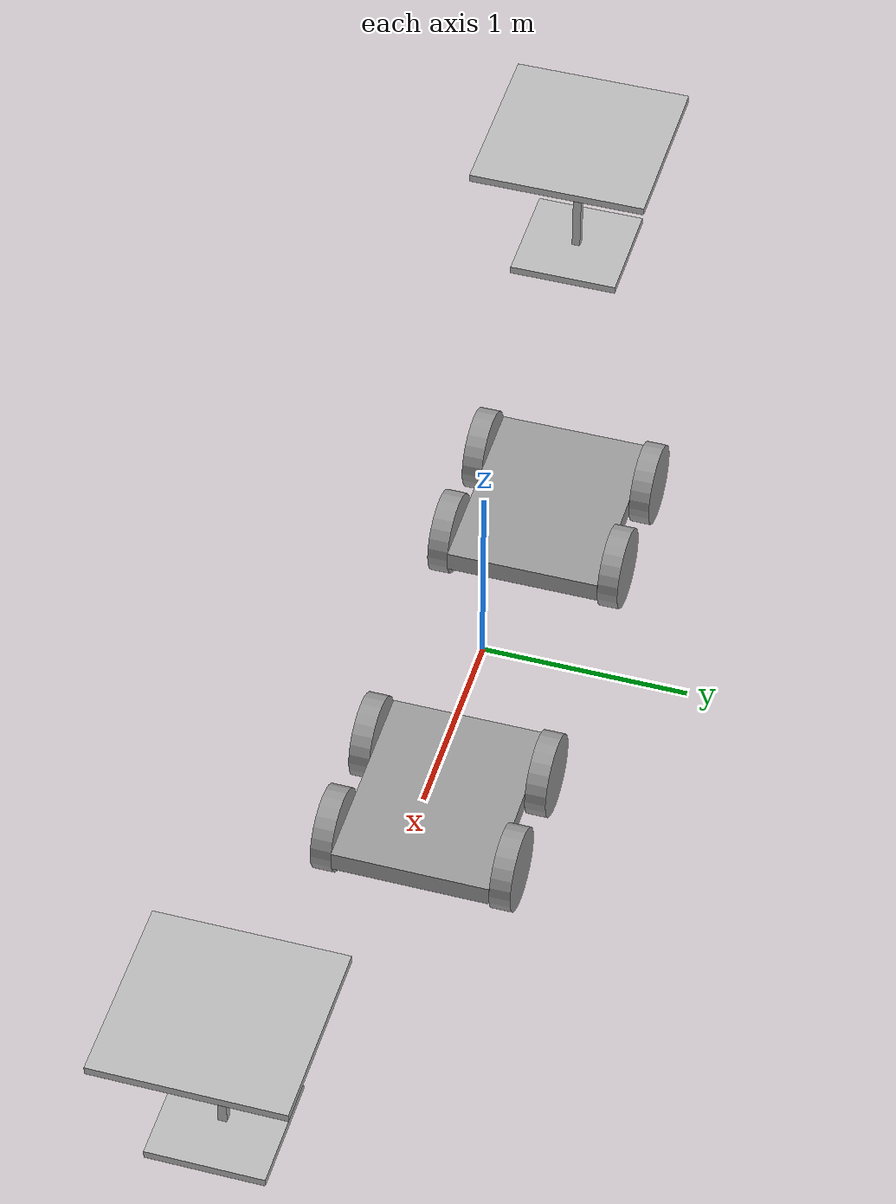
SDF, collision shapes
<?xml version='1.0'?>
<sdf version='1.6'>
  <model name='robotcar'>
    <link name='link_0'>
      <pose frame=''>1.00986 0.084907 0.033333 0 -0 0</pose>
      <inertial>
        <mass>1</mass>
        <inertia>
          <ixx>0.166667</ixx>
          <ixy>0</ixy>
          <ixz>0</ixz>
          <iyy>0.166667</iyy>
          <iyz>0</iyz>
          <izz>0.166667</izz>
        </inertia>
        <pose frame=''>0 0 0 0 -0 0</pose>
      </inertial>
      <gravity>1</gravity>
      <self_collide>0</self_collide>
      <kinematic>0</kinematic>
      <visual name='visual'>
        <pose frame=''>0 0 0 0 -0 0</pose>
        <geometry>
          <box>
            <size>1 0.75 0.1</size>
          </box>
        </geometry>
        <material>
          <lighting>1</lighting>
          <script>
            <uri>file://media/materials/scripts/gazebo.material</uri>
            <name>Gazebo/Grey</name>
          </script>
          <shader type='pixel'>
            <normal_map>__default__</normal_map>
          </shader>
          <ambient>0.3 0.3 0.3 1</ambient>
          <diffuse>0.7 0.7 0.7 1</diffuse>
          <specular>0.01 0.01 0.01 1</specular>
          <emissive>0 0 0 1</emissive>
        </material>
        <transparency>0</transparency>
        <cast_shadows>1</cast_shadows>
      </visual>
      <collision name='collision'>
        <laser_retro>0</laser_retro>
        <max_contacts>10</max_contacts>
        <pose frame=''>0 0 0 0 -0 0</pose>
        <geometry>
          <box>
            <size>1 0.75 0.1</size>
          </box>
        </geometry>
        <surface>
          <friction>
            <ode>
              <mu>1</mu>
              <mu2>1</mu2>
              <fdir1>0 0 0</fdir1>
              <slip1>0</slip1>
              <slip2>0</slip2>
            </ode>
            <torsional>
              <coefficient>1</coefficient>
              <patch_radius>0</patch_radius>
              <surface_radius>0</surface_radius>
              <use_patch_radius>1</use_patch_radius>
              <ode>
                <slip>0</slip>
              </ode>
            </torsional>
          </friction>
          <bounce>
            <restitution_coefficient>0</restitution_coefficient>
            <threshold>1e+06</threshold>
          </bounce>
          <contact>
            <collide_without_contact>0</collide_without_contact>
            <collide_without_contact_bitmask>1</collide_without_contact_bitmask>
            <collide_bitmask>1</collide_bitmask>
            <ode>
              <soft_cfm>0</soft_cfm>
              <soft_erp>0.2</soft_erp>
              <kp>1e+13</kp>
              <kd>1</kd>
              <max_vel>0.01</max_vel>
              <min_depth>0</min_depth>
            </ode>
            <bullet>
              <split_impulse>1</split_impulse>
              <split_impulse_penetration_threshold>-0.01</split_impulse_penetration_threshold>
              <soft_cfm>0</soft_cfm>
              <soft_erp>0.2</soft_erp>
              <kp>1e+13</kp>
              <kd>1</kd>
            </bullet>
          </contact>
        </surface>
      </collision>
    </link>
    <link name='link_0_clone'>
      <pose frame=''>-0.984516 0.057028 0.033333 0 -0 0</pose>
      <inertial>
        <mass>1</mass>
        <inertia>
          <ixx>0.166667</ixx>
          <ixy>0</ixy>
          <ixz>0</ixz>
          <iyy>0.166667</iyy>
          <iyz>0</iyz>
          <izz>0.166667</izz>
        </inertia>
        <pose frame=''>0 0 0 0 -0 0</pose>
      </inertial>
      <self_collide>0</self_collide>
      <kinematic>0</kinematic>
      <visual name='visual'>
        <pose frame=''>0 0 0 0 -0 0</pose>
        <geometry>
          <box>
            <size>1 0.75 0.1</size>
          </box>
        </geometry>
        <material>
          <lighting>1</lighting>
          <script>
            <uri>file://media/materials/scripts/gazebo.material</uri>
            <name>Gazebo/Grey</name>
          </script>
          <shader type='pixel'>
            <normal_map>__default__</normal_map>
          </shader>
          <ambient>0.3 0.3 0.3 1</ambient>
          <diffuse>0.7 0.7 0.7 1</diffuse>
          <specular>0.01 0.01 0.01 1</specular>
          <emissive>0 0 0 1</emissive>
        </material>
        <transparency>0</transparency>
        <cast_shadows>1</cast_shadows>
      </visual>
      <collision name='collision'>
        <laser_retro>0</laser_retro>
        <max_contacts>10</max_contacts>
        <pose frame=''>0 0 0 0 -0 0</pose>
        <geometry>
          <box>
            <size>1 0.75 0.1</size>
          </box>
        </geometry>
        <surface>
          <friction>
            <ode>
              <mu>1</mu>
              <mu2>1</mu2>
              <fdir1>0 0 0</fdir1>
              <slip1>0</slip1>
              <slip2>0</slip2>
            </ode>
            <torsional>
              <coefficient>1</coefficient>
              <patch_radius>0</patch_radius>
              <surface_radius>0</surface_radius>
              <use_patch_radius>1</use_patch_radius>
              <ode>
                <slip>0</slip>
              </ode>
            </torsional>
          </friction>
          <bounce>
            <restitution_coefficient>0</restitution_coefficient>
            <threshold>1e+06</threshold>
          </bounce>
          <contact>
            <collide_without_contact>0</collide_without_contact>
            <collide_without_contact_bitmask>1</collide_without_contact_bitmask>
            <collide_bitmask>1</collide_bitmask>
            <ode>
              <soft_cfm>0</soft_cfm>
              <soft_erp>0.2</soft_erp>
              <kp>1e+13</kp>
              <kd>1</kd>
              <max_vel>0.01</max_vel>
              <min_depth>0</min_depth>
            </ode>
            <bullet>
              <split_impulse>1</split_impulse>
              <split_impulse_penetration_threshold>-0.01</split_impulse_penetration_threshold>
              <soft_cfm>0</soft_cfm>
              <soft_erp>0.2</soft_erp>
              <kp>1e+13</kp>
              <kd>1</kd>
            </bullet>
          </contact>
        </surface>
      </collision>
    </link>
    <link name='link_1_clone'>
      <pose frame=''>1.30986 0.509926 0.033333 1.5707 -0 0</pose>
      <inertial>
        <mass>1</mass>
        <inertia>
          <ixx>0.145833</ixx>
          <ixy>0</ixy>
          <ixz>0</ixz>
          <iyy>0.145833</iyy>
          <iyz>0</iyz>
          <izz>0.125</izz>
        </inertia>
        <pose frame=''>0 0 0 0 -0 0</pose>
      </inertial>
      <self_collide>0</self_collide>
      <kinematic>0</kinematic>
      <visual name='visual'>
        <pose frame=''>0 0 0 0 -0 0</pose>
        <geometry>
          <cylinder>
            <radius>0.2</radius>
            <length>0.1</length>
          </cylinder>
        </geometry>
        <material>
          <lighting>1</lighting>
          <script>
            <uri>file://media/materials/scripts/gazebo.material</uri>
            <name>Gazebo/Grey</name>
          </script>
          <shader type='pixel'>
            <normal_map>__default__</normal_map>
          </shader>
          <ambient>0.3 0.3 0.3 1</ambient>
          <diffuse>0.7 0.7 0.7 1</diffuse>
          <specular>0.01 0.01 0.01 1</specular>
          <emissive>0 0 0 1</emissive>
        </material>
        <transparency>0</transparency>
        <cast_shadows>1</cast_shadows>
      </visual>
      <collision name='collision'>
        <laser_retro>0</laser_retro>
        <max_contacts>10</max_contacts>
        <pose frame=''>0 0 0 0 -0 0</pose>
        <geometry>
          <cylinder>
            <radius>0.2</radius>
            <length>0.1</length>
          </cylinder>
        </geometry>
        <surface>
          <friction>
            <ode>
              <mu>1</mu>
              <mu2>1</mu2>
              <fdir1>0 0 0</fdir1>
              <slip1>0</slip1>
              <slip2>0</slip2>
            </ode>
            <torsional>
              <coefficient>1</coefficient>
              <patch_radius>0</patch_radius>
              <surface_radius>0</surface_radius>
              <use_patch_radius>1</use_patch_radius>
              <ode>
                <slip>0</slip>
              </ode>
            </torsional>
          </friction>
          <bounce>
            <restitution_coefficient>0</restitution_coefficient>
            <threshold>1e+06</threshold>
          </bounce>
          <contact>
            <collide_without_contact>0</collide_without_contact>
            <collide_without_contact_bitmask>1</collide_without_contact_bitmask>
            <collide_bitmask>1</collide_bitmask>
            <ode>
              <soft_cfm>0</soft_cfm>
              <soft_erp>0.2</soft_erp>
              <kp>1e+13</kp>
              <kd>1</kd>
              <max_vel>0.01</max_vel>
              <min_depth>0</min_depth>
            </ode>
            <bullet>
              <split_impulse>1</split_impulse>
              <split_impulse_penetration_threshold>-0.01</split_impulse_penetration_threshold>
              <soft_cfm>0</soft_cfm>
              <soft_erp>0.2</soft_erp>
              <kp>1e+13</kp>
              <kd>1</kd>
            </bullet>
          </contact>
        </surface>
      </collision>
    </link>
    <link name='link_1_clone_0'>
      <pose frame=''>1.30986 -0.340113 0.033333 1.5707 -0 0</pose>
      <inertial>
        <mass>1</mass>
        <inertia>
          <ixx>0.145833</ixx>
          <ixy>0</ixy>
          <ixz>0</ixz>
          <iyy>0.145833</iyy>
          <iyz>0</iyz>
          <izz>0.125</izz>
        </inertia>
        <pose frame=''>0 0 0 0 -0 0</pose>
      </inertial>
      <self_collide>0</self_collide>
      <kinematic>0</kinematic>
      <visual name='visual'>
        <pose frame=''>0 0 0 0 -0 0</pose>
        <geometry>
          <cylinder>
            <radius>0.2</radius>
            <length>0.1</length>
          </cylinder>
        </geometry>
        <material>
          <lighting>1</lighting>
          <script>
            <uri>file://media/materials/scripts/gazebo.material</uri>
            <name>Gazebo/Grey</name>
          </script>
          <shader type='pixel'>
            <normal_map>__default__</normal_map>
          </shader>
          <ambient>0.3 0.3 0.3 1</ambient>
          <diffuse>0.7 0.7 0.7 1</diffuse>
          <specular>0.01 0.01 0.01 1</specular>
          <emissive>0 0 0 1</emissive>
        </material>
        <transparency>0</transparency>
        <cast_shadows>1</cast_shadows>
      </visual>
      <collision name='collision'>
        <laser_retro>0</laser_retro>
        <max_contacts>10</max_contacts>
        <pose frame=''>0 0 0 0 -0 0</pose>
        <geometry>
          <cylinder>
            <radius>0.2</radius>
            <length>0.1</length>
          </cylinder>
        </geometry>
        <surface>
          <friction>
            <ode>
              <mu>1</mu>
              <mu2>1</mu2>
              <fdir1>0 0 0</fdir1>
              <slip1>0</slip1>
              <slip2>0</slip2>
            </ode>
            <torsional>
              <coefficient>1</coefficient>
              <patch_radius>0</patch_radius>
              <surface_radius>0</surface_radius>
              <use_patch_radius>1</use_patch_radius>
              <ode>
                <slip>0</slip>
              </ode>
            </torsional>
          </friction>
          <bounce>
            <restitution_coefficient>0</restitution_coefficient>
            <threshold>1e+06</threshold>
          </bounce>
          <contact>
            <collide_without_contact>0</collide_without_contact>
            <collide_without_contact_bitmask>1</collide_without_contact_bitmask>
            <collide_bitmask>1</collide_bitmask>
            <ode>
              <soft_cfm>0</soft_cfm>
              <soft_erp>0.2</soft_erp>
              <kp>1e+13</kp>
              <kd>1</kd>
              <max_vel>0.01</max_vel>
              <min_depth>0</min_depth>
            </ode>
            <bullet>
              <split_impulse>1</split_impulse>
              <split_impulse_penetration_threshold>-0.01</split_impulse_penetration_threshold>
              <soft_cfm>0</soft_cfm>
              <soft_erp>0.2</soft_erp>
              <kp>1e+13</kp>
              <kd>1</kd>
            </bullet>
          </contact>
        </surface>
      </collision>
    </link>
    <link name='link_1_clone_1'>
      <pose frame=''>0.709862 -0.340113 0.033333 1.5707 -0 0</pose>
      <inertial>
        <mass>1</mass>
        <inertia>
          <ixx>0.145833</ixx>
          <ixy>0</ixy>
          <ixz>0</ixz>
          <iyy>0.145833</iyy>
          <iyz>0</iyz>
          <izz>0.125</izz>
        </inertia>
        <pose frame=''>0 0 0 0 -0 0</pose>
      </inertial>
      <self_collide>0</self_collide>
      <kinematic>0</kinematic>
      <visual name='visual'>
        <pose frame=''>0 0 0 0 -0 0</pose>
        <geometry>
          <cylinder>
            <radius>0.2</radius>
            <length>0.1</length>
          </cylinder>
        </geometry>
        <material>
          <lighting>1</lighting>
          <script>
            <uri>file://media/materials/scripts/gazebo.material</uri>
            <name>Gazebo/Grey</name>
          </script>
          <shader type='pixel'>
            <normal_map>__default__</normal_map>
          </shader>
          <ambient>0.3 0.3 0.3 1</ambient>
          <diffuse>0.7 0.7 0.7 1</diffuse>
          <specular>0.01 0.01 0.01 1</specular>
          <emissive>0 0 0 1</emissive>
        </material>
        <transparency>0</transparency>
        <cast_shadows>1</cast_shadows>
      </visual>
      <collision name='collision'>
        <laser_retro>0</laser_retro>
        <max_contacts>10</max_contacts>
        <pose frame=''>0 0 0 0 -0 0</pose>
        <geometry>
          <cylinder>
            <radius>0.2</radius>
            <length>0.1</length>
          </cylinder>
        </geometry>
        <surface>
          <friction>
            <ode>
              <mu>1</mu>
              <mu2>1</mu2>
              <fdir1>0 0 0</fdir1>
              <slip1>0</slip1>
              <slip2>0</slip2>
            </ode>
            <torsional>
              <coefficient>1</coefficient>
              <patch_radius>0</patch_radius>
              <surface_radius>0</surface_radius>
              <use_patch_radius>1</use_patch_radius>
              <ode>
                <slip>0</slip>
              </ode>
            </torsional>
          </friction>
          <bounce>
            <restitution_coefficient>0</restitution_coefficient>
            <threshold>1e+06</threshold>
          </bounce>
          <contact>
            <collide_without_contact>0</collide_without_contact>
            <collide_without_contact_bitmask>1</collide_without_contact_bitmask>
            <collide_bitmask>1</collide_bitmask>
            <ode>
              <soft_cfm>0</soft_cfm>
              <soft_erp>0.2</soft_erp>
              <kp>1e+13</kp>
              <kd>1</kd>
              <max_vel>0.01</max_vel>
              <min_depth>0</min_depth>
            </ode>
            <bullet>
              <split_impulse>1</split_impulse>
              <split_impulse_penetration_threshold>-0.01</split_impulse_penetration_threshold>
              <soft_cfm>0</soft_cfm>
              <soft_erp>0.2</soft_erp>
              <kp>1e+13</kp>
              <kd>1</kd>
            </bullet>
          </contact>
        </surface>
      </collision>
    </link>
    <link name='link_1_clone_clone'>
      <pose frame=''>0.709862 0.509926 0.033333 1.5707 -0 0</pose>
      <inertial>
        <mass>1</mass>
        <inertia>
          <ixx>0.145833</ixx>
          <ixy>0</ixy>
          <ixz>0</ixz>
          <iyy>0.145833</iyy>
          <iyz>0</iyz>
          <izz>0.125</izz>
        </inertia>
        <pose frame=''>0 0 0 0 -0 0</pose>
      </inertial>
      <self_collide>0</self_collide>
      <kinematic>0</kinematic>
      <visual name='visual'>
        <pose frame=''>0 0 0 0 -0 0</pose>
        <geometry>
          <cylinder>
            <radius>0.2</radius>
            <length>0.1</length>
          </cylinder>
        </geometry>
        <material>
          <lighting>1</lighting>
          <script>
            <uri>file://media/materials/scripts/gazebo.material</uri>
            <name>Gazebo/Grey</name>
          </script>
          <shader type='pixel'>
            <normal_map>__default__</normal_map>
          </shader>
          <ambient>0.3 0.3 0.3 1</ambient>
          <diffuse>0.7 0.7 0.7 1</diffuse>
          <specular>0.01 0.01 0.01 1</specular>
          <emissive>0 0 0 1</emissive>
        </material>
        <transparency>0</transparency>
        <cast_shadows>1</cast_shadows>
      </visual>
      <collision name='collision'>
        <laser_retro>0</laser_retro>
        <max_contacts>10</max_contacts>
        <pose frame=''>0 0 0 0 -0 0</pose>
        <geometry>
          <cylinder>
            <radius>0.2</radius>
            <length>0.1</length>
          </cylinder>
        </geometry>
        <surface>
          <friction>
            <ode>
              <mu>1</mu>
              <mu2>1</mu2>
              <fdir1>0 0 0</fdir1>
              <slip1>0</slip1>
              <slip2>0</slip2>
            </ode>
            <torsional>
              <coefficient>1</coefficient>
              <patch_radius>0</patch_radius>
              <surface_radius>0</surface_radius>
              <use_patch_radius>1</use_patch_radius>
              <ode>
                <slip>0</slip>
              </ode>
            </torsional>
          </friction>
          <bounce>
            <restitution_coefficient>0</restitution_coefficient>
            <threshold>1e+06</threshold>
          </bounce>
          <contact>
            <collide_without_contact>0</collide_without_contact>
            <collide_without_contact_bitmask>1</collide_without_contact_bitmask>
            <collide_bitmask>1</collide_bitmask>
            <ode>
              <soft_cfm>0</soft_cfm>
              <soft_erp>0.2</soft_erp>
              <kp>1e+13</kp>
              <kd>1</kd>
              <max_vel>0.01</max_vel>
              <min_depth>0</min_depth>
            </ode>
            <bullet>
              <split_impulse>1</split_impulse>
              <split_impulse_penetration_threshold>-0.01</split_impulse_penetration_threshold>
              <soft_cfm>0</soft_cfm>
              <soft_erp>0.2</soft_erp>
              <kp>1e+13</kp>
              <kd>1</kd>
            </bullet>
          </contact>
        </surface>
      </collision>
    </link>
    <link name='link_1_clone_clone_clone'>
      <pose frame=''>-0.684516 0.482047 0.033333 1.5707 -0 0</pose>
      <inertial>
        <mass>1</mass>
        <inertia>
          <ixx>0.145833</ixx>
          <ixy>0</ixy>
          <ixz>0</ixz>
          <iyy>0.145833</iyy>
          <iyz>0</iyz>
          <izz>0.125</izz>
        </inertia>
        <pose frame=''>0 0 0 0 -0 0</pose>
      </inertial>
      <self_collide>0</self_collide>
      <kinematic>0</kinematic>
      <visual name='visual'>
        <pose frame=''>0 0 0 0 -0 0</pose>
        <geometry>
          <cylinder>
            <radius>0.2</radius>
            <length>0.1</length>
          </cylinder>
        </geometry>
        <material>
          <lighting>1</lighting>
          <script>
            <uri>file://media/materials/scripts/gazebo.material</uri>
            <name>Gazebo/Grey</name>
          </script>
          <shader type='pixel'>
            <normal_map>__default__</normal_map>
          </shader>
          <ambient>0.3 0.3 0.3 1</ambient>
          <diffuse>0.7 0.7 0.7 1</diffuse>
          <specular>0.01 0.01 0.01 1</specular>
          <emissive>0 0 0 1</emissive>
        </material>
        <transparency>0</transparency>
        <cast_shadows>1</cast_shadows>
      </visual>
      <collision name='collision'>
        <laser_retro>0</laser_retro>
        <max_contacts>10</max_contacts>
        <pose frame=''>0 0 0 0 -0 0</pose>
        <geometry>
          <cylinder>
            <radius>0.2</radius>
            <length>0.1</length>
          </cylinder>
        </geometry>
        <surface>
          <friction>
            <ode>
              <mu>1</mu>
              <mu2>1</mu2>
              <fdir1>0 0 0</fdir1>
              <slip1>0</slip1>
              <slip2>0</slip2>
            </ode>
            <torsional>
              <coefficient>1</coefficient>
              <patch_radius>0</patch_radius>
              <surface_radius>0</surface_radius>
              <use_patch_radius>1</use_patch_radius>
              <ode>
                <slip>0</slip>
              </ode>
            </torsional>
          </friction>
          <bounce>
            <restitution_coefficient>0</restitution_coefficient>
            <threshold>1e+06</threshold>
          </bounce>
          <contact>
            <collide_without_contact>0</collide_without_contact>
            <collide_without_contact_bitmask>1</collide_without_contact_bitmask>
            <collide_bitmask>1</collide_bitmask>
            <ode>
              <soft_cfm>0</soft_cfm>
              <soft_erp>0.2</soft_erp>
              <kp>1e+13</kp>
              <kd>1</kd>
              <max_vel>0.01</max_vel>
              <min_depth>0</min_depth>
            </ode>
            <bullet>
              <split_impulse>1</split_impulse>
              <split_impulse_penetration_threshold>-0.01</split_impulse_penetration_threshold>
              <soft_cfm>0</soft_cfm>
              <soft_erp>0.2</soft_erp>
              <kp>1e+13</kp>
              <kd>1</kd>
            </bullet>
          </contact>
        </surface>
      </collision>
    </link>
    <link name='link_1_clone_clone_clone_0'>
      <pose frame=''>-1.28452 0.482047 0.033333 1.5707 -0 0</pose>
      <inertial>
        <mass>1</mass>
        <inertia>
          <ixx>0.145833</ixx>
          <ixy>0</ixy>
          <ixz>0</ixz>
          <iyy>0.145833</iyy>
          <iyz>0</iyz>
          <izz>0.125</izz>
        </inertia>
        <pose frame=''>0 0 0 0 -0 0</pose>
      </inertial>
      <self_collide>0</self_collide>
      <kinematic>0</kinematic>
      <visual name='visual'>
        <pose frame=''>0 0 0 0 -0 0</pose>
        <geometry>
          <cylinder>
            <radius>0.2</radius>
            <length>0.1</length>
          </cylinder>
        </geometry>
        <material>
          <lighting>1</lighting>
          <script>
            <uri>file://media/materials/scripts/gazebo.material</uri>
            <name>Gazebo/Grey</name>
          </script>
          <shader type='pixel'>
            <normal_map>__default__</normal_map>
          </shader>
          <ambient>0.3 0.3 0.3 1</ambient>
          <diffuse>0.7 0.7 0.7 1</diffuse>
          <specular>0.01 0.01 0.01 1</specular>
          <emissive>0 0 0 1</emissive>
        </material>
        <transparency>0</transparency>
        <cast_shadows>1</cast_shadows>
      </visual>
      <collision name='collision'>
        <laser_retro>0</laser_retro>
        <max_contacts>10</max_contacts>
        <pose frame=''>0 0 0 0 -0 0</pose>
        <geometry>
          <cylinder>
            <radius>0.2</radius>
            <length>0.1</length>
          </cylinder>
        </geometry>
        <surface>
          <friction>
            <ode>
              <mu>1</mu>
              <mu2>1</mu2>
              <fdir1>0 0 0</fdir1>
              <slip1>0</slip1>
              <slip2>0</slip2>
            </ode>
            <torsional>
              <coefficient>1</coefficient>
              <patch_radius>0</patch_radius>
              <surface_radius>0</surface_radius>
              <use_patch_radius>1</use_patch_radius>
              <ode>
                <slip>0</slip>
              </ode>
            </torsional>
          </friction>
          <bounce>
            <restitution_coefficient>0</restitution_coefficient>
            <threshold>1e+06</threshold>
          </bounce>
          <contact>
            <collide_without_contact>0</collide_without_contact>
            <collide_without_contact_bitmask>1</collide_without_contact_bitmask>
            <collide_bitmask>1</collide_bitmask>
            <ode>
              <soft_cfm>0</soft_cfm>
              <soft_erp>0.2</soft_erp>
              <kp>1e+13</kp>
              <kd>1</kd>
              <max_vel>0.01</max_vel>
              <min_depth>0</min_depth>
            </ode>
            <bullet>
              <split_impulse>1</split_impulse>
              <split_impulse_penetration_threshold>-0.01</split_impulse_penetration_threshold>
              <soft_cfm>0</soft_cfm>
              <soft_erp>0.2</soft_erp>
              <kp>1e+13</kp>
              <kd>1</kd>
            </bullet>
          </contact>
        </surface>
      </collision>
    </link>
    <link name='link_1_clone_clone_clone_1'>
      <pose frame=''>-0.684516 -0.367991 0.033333 1.5707 -0 0</pose>
      <inertial>
        <mass>1</mass>
        <inertia>
          <ixx>0.145833</ixx>
          <ixy>0</ixy>
          <ixz>0</ixz>
          <iyy>0.145833</iyy>
          <iyz>0</iyz>
          <izz>0.125</izz>
        </inertia>
        <pose frame=''>0 0 0 0 -0 0</pose>
      </inertial>
      <self_collide>0</self_collide>
      <kinematic>0</kinematic>
      <visual name='visual'>
        <pose frame=''>0 0 0 0 -0 0</pose>
        <geometry>
          <cylinder>
            <radius>0.2</radius>
            <length>0.1</length>
          </cylinder>
        </geometry>
        <material>
          <lighting>1</lighting>
          <script>
            <uri>file://media/materials/scripts/gazebo.material</uri>
            <name>Gazebo/Grey</name>
          </script>
          <shader type='pixel'>
            <normal_map>__default__</normal_map>
          </shader>
          <ambient>0.3 0.3 0.3 1</ambient>
          <diffuse>0.7 0.7 0.7 1</diffuse>
          <specular>0.01 0.01 0.01 1</specular>
          <emissive>0 0 0 1</emissive>
        </material>
        <transparency>0</transparency>
        <cast_shadows>1</cast_shadows>
      </visual>
      <collision name='collision'>
        <laser_retro>0</laser_retro>
        <max_contacts>10</max_contacts>
        <pose frame=''>0 0 0 0 -0 0</pose>
        <geometry>
          <cylinder>
            <radius>0.2</radius>
            <length>0.1</length>
          </cylinder>
        </geometry>
        <surface>
          <friction>
            <ode>
              <mu>1</mu>
              <mu2>1</mu2>
              <fdir1>0 0 0</fdir1>
              <slip1>0</slip1>
              <slip2>0</slip2>
            </ode>
            <torsional>
              <coefficient>1</coefficient>
              <patch_radius>0</patch_radius>
              <surface_radius>0</surface_radius>
              <use_patch_radius>1</use_patch_radius>
              <ode>
                <slip>0</slip>
              </ode>
            </torsional>
          </friction>
          <bounce>
            <restitution_coefficient>0</restitution_coefficient>
            <threshold>1e+06</threshold>
          </bounce>
          <contact>
            <collide_without_contact>0</collide_without_contact>
            <collide_without_contact_bitmask>1</collide_without_contact_bitmask>
            <collide_bitmask>1</collide_bitmask>
            <ode>
              <soft_cfm>0</soft_cfm>
              <soft_erp>0.2</soft_erp>
              <kp>1e+13</kp>
              <kd>1</kd>
              <max_vel>0.01</max_vel>
              <min_depth>0</min_depth>
            </ode>
            <bullet>
              <split_impulse>1</split_impulse>
              <split_impulse_penetration_threshold>-0.01</split_impulse_penetration_threshold>
              <soft_cfm>0</soft_cfm>
              <soft_erp>0.2</soft_erp>
              <kp>1e+13</kp>
              <kd>1</kd>
            </bullet>
          </contact>
        </surface>
      </collision>
    </link>
    <link name='link_1_clone_clone_clone_2'>
      <pose frame=''>-1.28452 -0.367991 0.033333 1.5707 -0 0</pose>
      <inertial>
        <mass>1</mass>
        <inertia>
          <ixx>0.145833</ixx>
          <ixy>0</ixy>
          <ixz>0</ixz>
          <iyy>0.145833</iyy>
          <iyz>0</iyz>
          <izz>0.125</izz>
        </inertia>
        <pose frame=''>0 0 0 0 -0 0</pose>
      </inertial>
      <self_collide>0</self_collide>
      <kinematic>0</kinematic>
      <visual name='visual'>
        <pose frame=''>0 0 0 0 -0 0</pose>
        <geometry>
          <cylinder>
            <radius>0.2</radius>
            <length>0.1</length>
          </cylinder>
        </geometry>
        <material>
          <lighting>1</lighting>
          <script>
            <uri>file://media/materials/scripts/gazebo.material</uri>
            <name>Gazebo/Grey</name>
          </script>
          <shader type='pixel'>
            <normal_map>__default__</normal_map>
          </shader>
          <ambient>0.3 0.3 0.3 1</ambient>
          <diffuse>0.7 0.7 0.7 1</diffuse>
          <specular>0.01 0.01 0.01 1</specular>
          <emissive>0 0 0 1</emissive>
        </material>
        <transparency>0</transparency>
        <cast_shadows>1</cast_shadows>
      </visual>
      <collision name='collision'>
        <laser_retro>0</laser_retro>
        <max_contacts>10</max_contacts>
        <pose frame=''>0 0 0 0 -0 0</pose>
        <geometry>
          <cylinder>
            <radius>0.2</radius>
            <length>0.1</length>
          </cylinder>
        </geometry>
        <surface>
          <friction>
            <ode>
              <mu>1</mu>
              <mu2>1</mu2>
              <fdir1>0 0 0</fdir1>
              <slip1>0</slip1>
              <slip2>0</slip2>
            </ode>
            <torsional>
              <coefficient>1</coefficient>
              <patch_radius>0</patch_radius>
              <surface_radius>0</surface_radius>
              <use_patch_radius>1</use_patch_radius>
              <ode>
                <slip>0</slip>
              </ode>
            </torsional>
          </friction>
          <bounce>
            <restitution_coefficient>0</restitution_coefficient>
            <threshold>1e+06</threshold>
          </bounce>
          <contact>
            <collide_without_contact>0</collide_without_contact>
            <collide_without_contact_bitmask>1</collide_without_contact_bitmask>
            <collide_bitmask>1</collide_bitmask>
            <ode>
              <soft_cfm>0</soft_cfm>
              <soft_erp>0.2</soft_erp>
              <kp>1e+13</kp>
              <kd>1</kd>
              <max_vel>0.01</max_vel>
              <min_depth>0</min_depth>
            </ode>
            <bullet>
              <split_impulse>1</split_impulse>
              <split_impulse_penetration_threshold>-0.01</split_impulse_penetration_threshold>
              <soft_cfm>0</soft_cfm>
              <soft_erp>0.2</soft_erp>
              <kp>1e+13</kp>
              <kd>1</kd>
            </bullet>
          </contact>
        </surface>
      </collision>
    </link>
    <model name='cafe_table'>
      <static>1</static>
      <link name='link'>
        <collision name='surface'>
          <pose frame=''>0 0 0.755 0 -0 0</pose>
          <geometry>
            <box>
              <size>0.913 0.913 0.04</size>
            </box>
          </geometry>
        </collision>
        <collision name='column'>
          <pose frame=''>0 0 0.37 0 -0 0</pose>
          <geometry>
            <box>
              <size>0.042 0.042 0.74</size>
            </box>
          </geometry>
        </collision>
        <collision name='base'>
          <pose frame=''>0 0 0.02 0 -0 0</pose>
          <geometry>
            <box>
              <size>0.56 0.56 0.04</size>
            </box>
          </geometry>
        </collision>
        <visual name='visual'>
          <geometry>
            <mesh>
              <uri>model://cafe_table/meshes/cafe_table.dae</uri>
            </mesh>
          </geometry>
        </visual>
      </link>
      <pose frame=''>2.93377 -0.3445 -0.166667 0 -0 0</pose>
    </model>
    <model name='cafe_table_clone'>
      <static>1</static>
      <link name='link'>
        <collision name='surface'>
          <pose frame=''>0 0 0.755 0 -0 0</pose>
          <geometry>
            <box>
              <size>0.913 0.913 0.04</size>
            </box>
          </geometry>
        </collision>
        <collision name='column'>
          <pose frame=''>0 0 0.37 0 -0 0</pose>
          <geometry>
            <box>
              <size>0.042 0.042 0.74</size>
            </box>
          </geometry>
        </collision>
        <collision name='base'>
          <pose frame=''>0 0 0.02 0 -0 0</pose>
          <geometry>
            <box>
              <size>0.56 0.56 0.04</size>
            </box>
          </geometry>
        </collision>
        <visual name='visual'>
          <geometry>
            <mesh>
              <uri>model://cafe_table/meshes/cafe_table.dae</uri>
            </mesh>
          </geometry>
        </visual>
      </link>
      <pose frame=''>-3.06049 -0.365172 -0.166667 0 -0 0</pose>
    </model>
    <joint name='link_0_JOINT_0' type='revolute'>
      <parent>link_0</parent>
      <child>link_1_clone</child>
      <pose frame=''>0 0 0 0 -0 0</pose>
      <axis>
        <xyz>0 0 1</xyz>
        <use_parent_model_frame>0</use_parent_model_frame>
        <limit>
          <lower>-1.79769e+308</lower>
          <upper>1.79769e+308</upper>
          <effort>-1</effort>
          <velocity>-1</velocity>
        </limit>
        <dynamics>
          <spring_reference>0</spring_reference>
          <spring_stiffness>0</spring_stiffness>
          <damping>0</damping>
        </dynamics>
      </axis>
      <physics>
        <ode>
          <limit>
            <cfm>0</cfm>
            <erp>0.2</erp>
          </limit>
          <suspension>
            <cfm>0</cfm>
            <erp>0.2</erp>
          </suspension>
        </ode>
      </physics>
    </joint>
    <joint name='link_0_JOINT_2' type='revolute'>
      <parent>link_0</parent>
      <child>link_1_clone_clone</child>
      <pose frame=''>0 0 0 0 -0 0</pose>
      <axis>
        <xyz>0 0 1</xyz>
        <use_parent_model_frame>0</use_parent_model_frame>
        <limit>
          <lower>-1.79769e+308</lower>
          <upper>1.79769e+308</upper>
          <effort>-1</effort>
          <velocity>-1</velocity>
        </limit>
        <dynamics>
          <spring_reference>0</spring_reference>
          <spring_stiffness>0</spring_stiffness>
          <damping>0</damping>
        </dynamics>
      </axis>
      <physics>
        <ode>
          <limit>
            <cfm>0</cfm>
            <erp>0.2</erp>
          </limit>
          <suspension>
            <cfm>0</cfm>
            <erp>0.2</erp>
          </suspension>
        </ode>
      </physics>
    </joint>
    <joint name='link_0_JOINT_3' type='revolute'>
      <parent>link_0</parent>
      <child>link_1_clone_0</child>
      <pose frame=''>0 0 0 0 -0 0</pose>
      <axis>
        <xyz>0 0 1</xyz>
        <use_parent_model_frame>0</use_parent_model_frame>
        <limit>
          <lower>-1.79769e+308</lower>
          <upper>1.79769e+308</upper>
          <effort>-1</effort>
          <velocity>-1</velocity>
        </limit>
        <dynamics>
          <spring_reference>0</spring_reference>
          <spring_stiffness>0</spring_stiffness>
          <damping>0</damping>
        </dynamics>
      </axis>
      <physics>
        <ode>
          <limit>
            <cfm>0</cfm>
            <erp>0.2</erp>
          </limit>
          <suspension>
            <cfm>0</cfm>
            <erp>0.2</erp>
          </suspension>
        </ode>
      </physics>
    </joint>
    <joint name='link_0_JOINT_4' type='revolute'>
      <parent>link_0</parent>
      <child>link_1_clone_1</child>
      <pose frame=''>0 0 0 0 -0 0</pose>
      <axis>
        <xyz>0 0 1</xyz>
        <use_parent_model_frame>0</use_parent_model_frame>
        <limit>
          <lower>-1.79769e+308</lower>
          <upper>1.79769e+308</upper>
          <effort>-1</effort>
          <velocity>-1</velocity>
        </limit>
        <dynamics>
          <spring_reference>0</spring_reference>
          <spring_stiffness>0</spring_stiffness>
          <damping>0</damping>
        </dynamics>
      </axis>
      <physics>
        <ode>
          <limit>
            <cfm>0</cfm>
            <erp>0.2</erp>
          </limit>
          <suspension>
            <cfm>0</cfm>
            <erp>0.2</erp>
          </suspension>
        </ode>
      </physics>
    </joint>
    <joint name='link_0_clone_JOINT_5' type='revolute'>
      <parent>link_0_clone</parent>
      <child>link_1_clone_clone_clone</child>
      <pose frame=''>0 0 0 0 -0 0</pose>
      <axis>
        <xyz>0 0 1</xyz>
        <use_parent_model_frame>0</use_parent_model_frame>
        <limit>
          <lower>-1.79769e+308</lower>
          <upper>1.79769e+308</upper>
          <effort>-1</effort>
          <velocity>-1</velocity>
        </limit>
        <dynamics>
          <spring_reference>0</spring_reference>
          <spring_stiffness>0</spring_stiffness>
          <damping>0</damping>
        </dynamics>
      </axis>
      <physics>
        <ode>
          <limit>
            <cfm>0</cfm>
            <erp>0.2</erp>
          </limit>
          <suspension>
            <cfm>0</cfm>
            <erp>0.2</erp>
          </suspension>
        </ode>
      </physics>
    </joint>
    <joint name='link_0_clone_JOINT_6' type='revolute'>
      <parent>link_0_clone</parent>
      <child>link_1_clone_clone_clone_0</child>
      <pose frame=''>0 0 0 0 -0 0</pose>
      <axis>
        <xyz>0 0 1</xyz>
        <use_parent_model_frame>0</use_parent_model_frame>
        <limit>
          <lower>-1.79769e+308</lower>
          <upper>1.79769e+308</upper>
          <effort>-1</effort>
          <velocity>-1</velocity>
        </limit>
        <dynamics>
          <spring_reference>0</spring_reference>
          <spring_stiffness>0</spring_stiffness>
          <damping>0</damping>
        </dynamics>
      </axis>
      <physics>
        <ode>
          <limit>
            <cfm>0</cfm>
            <erp>0.2</erp>
          </limit>
          <suspension>
            <cfm>0</cfm>
            <erp>0.2</erp>
          </suspension>
        </ode>
      </physics>
    </joint>
    <joint name='link_0_clone_JOINT_7' type='revolute'>
      <parent>link_0_clone</parent>
      <child>link_1_clone_clone_clone_1</child>
      <pose frame=''>0 0 0 0 -0 0</pose>
      <axis>
        <xyz>0 0 1</xyz>
        <use_parent_model_frame>0</use_parent_model_frame>
        <limit>
          <lower>-1.79769e+308</lower>
          <upper>1.79769e+308</upper>
          <effort>-1</effort>
          <velocity>-1</velocity>
        </limit>
        <dynamics>
          <spring_reference>0</spring_reference>
          <spring_stiffness>0</spring_stiffness>
          <damping>0</damping>
        </dynamics>
      </axis>
      <physics>
        <ode>
          <limit>
            <cfm>0</cfm>
            <erp>0.2</erp>
          </limit>
          <suspension>
            <cfm>0</cfm>
            <erp>0.2</erp>
          </suspension>
        </ode>
      </physics>
    </joint>
    <joint name='link_0_clone_JOINT_8' type='revolute'>
      <parent>link_0_clone</parent>
      <child>link_1_clone_clone_clone_2</child>
      <pose frame=''>0 0 0 0 -0 0</pose>
      <axis>
        <xyz>0 0 1</xyz>
        <use_parent_model_frame>0</use_parent_model_frame>
        <limit>
          <lower>-1.79769e+308</lower>
          <upper>1.79769e+308</upper>
          <effort>-1</effort>
          <velocity>-1</velocity>
        </limit>
        <dynamics>
          <spring_reference>0</spring_reference>
          <spring_stiffness>0</spring_stiffness>
          <damping>0</damping>
        </dynamics>
      </axis>
      <physics>
        <ode>
          <limit>
            <cfm>0</cfm>
            <erp>0.2</erp>
          </limit>
          <suspension>
            <cfm>0</cfm>
            <erp>0.2</erp>
          </suspension>
        </ode>
      </physics>
    </joint>
    <static>0</static>
    <allow_auto_disable>1</allow_auto_disable>
  </model>
</sdf>
